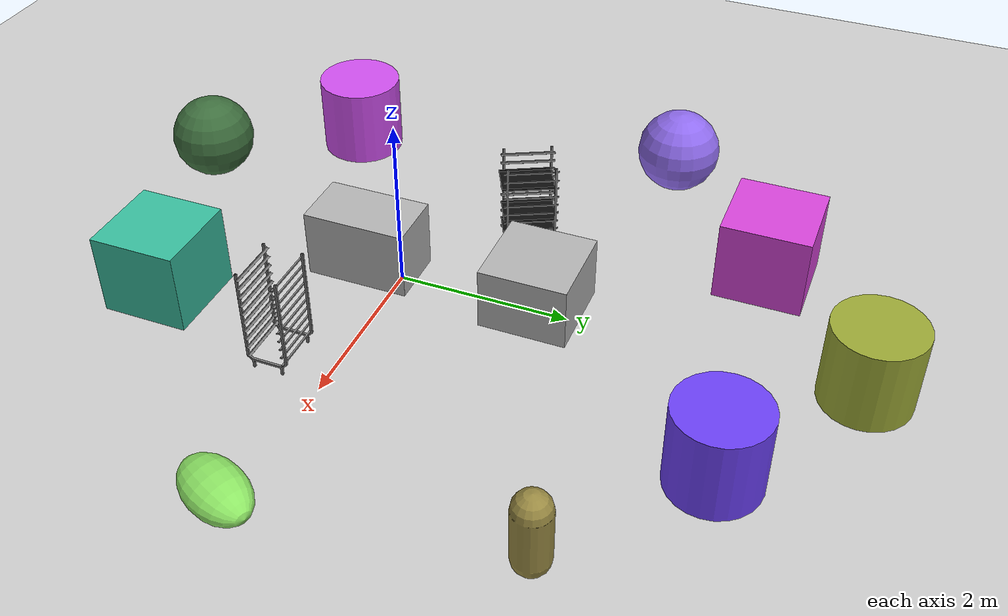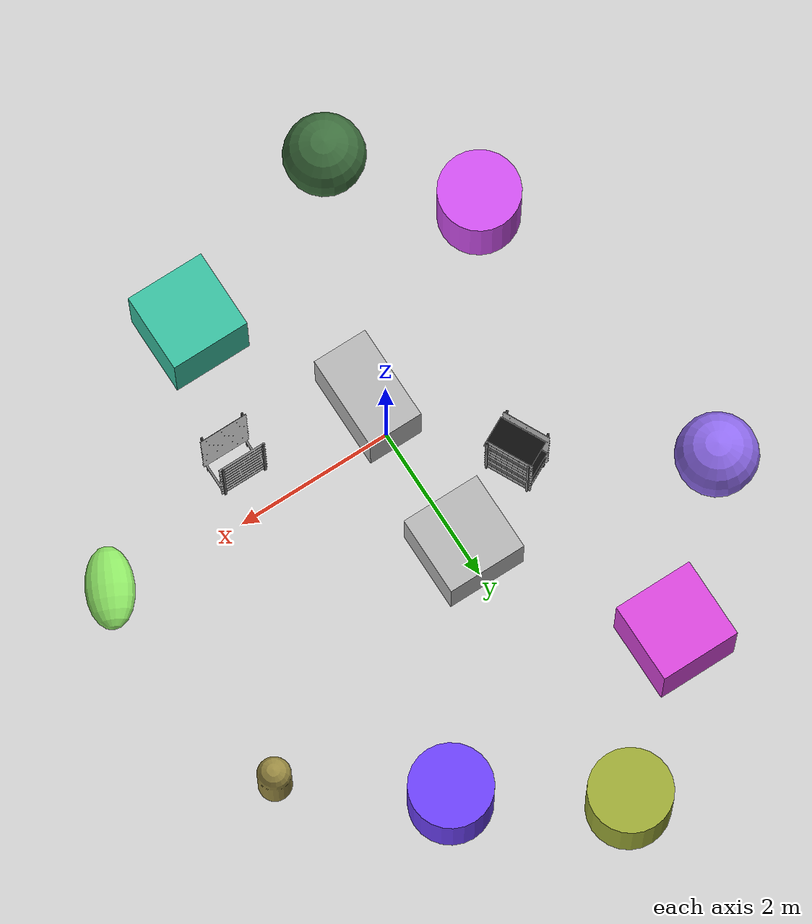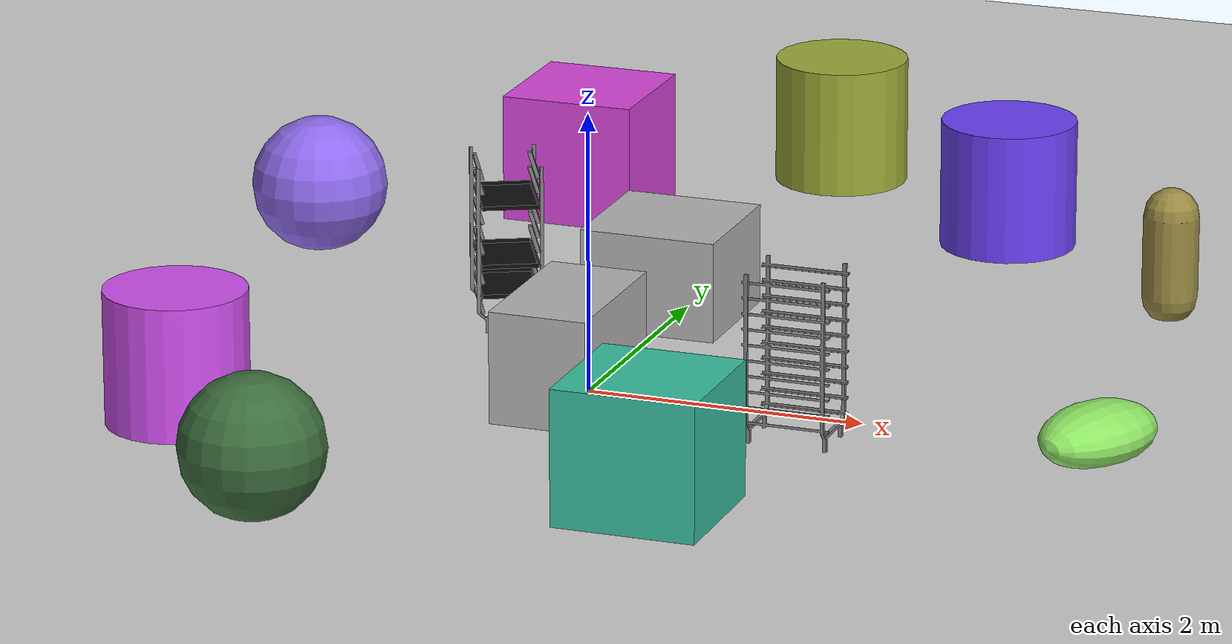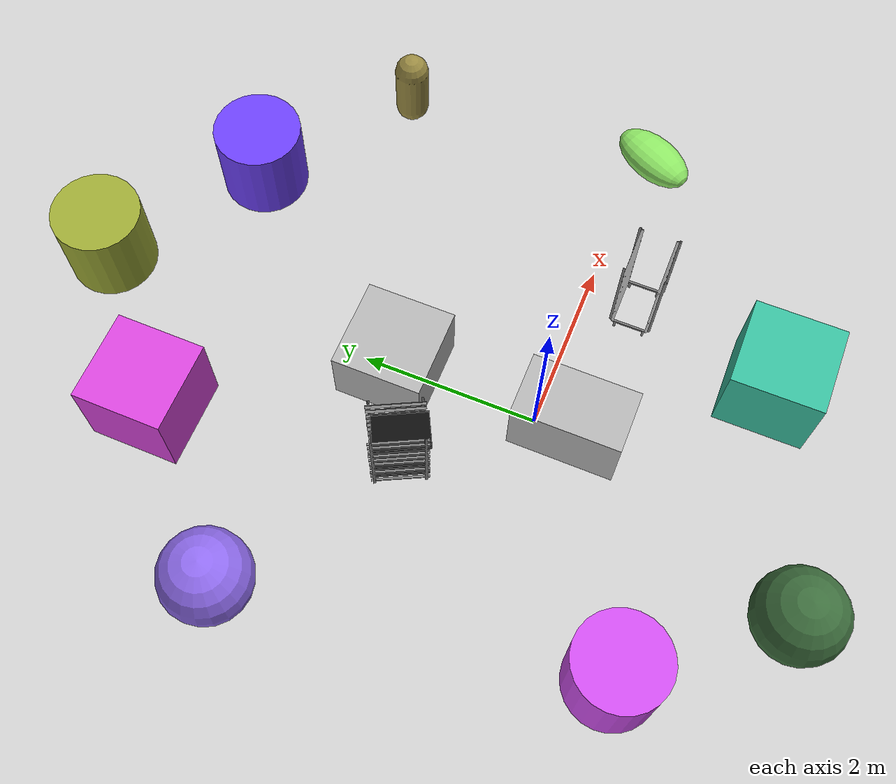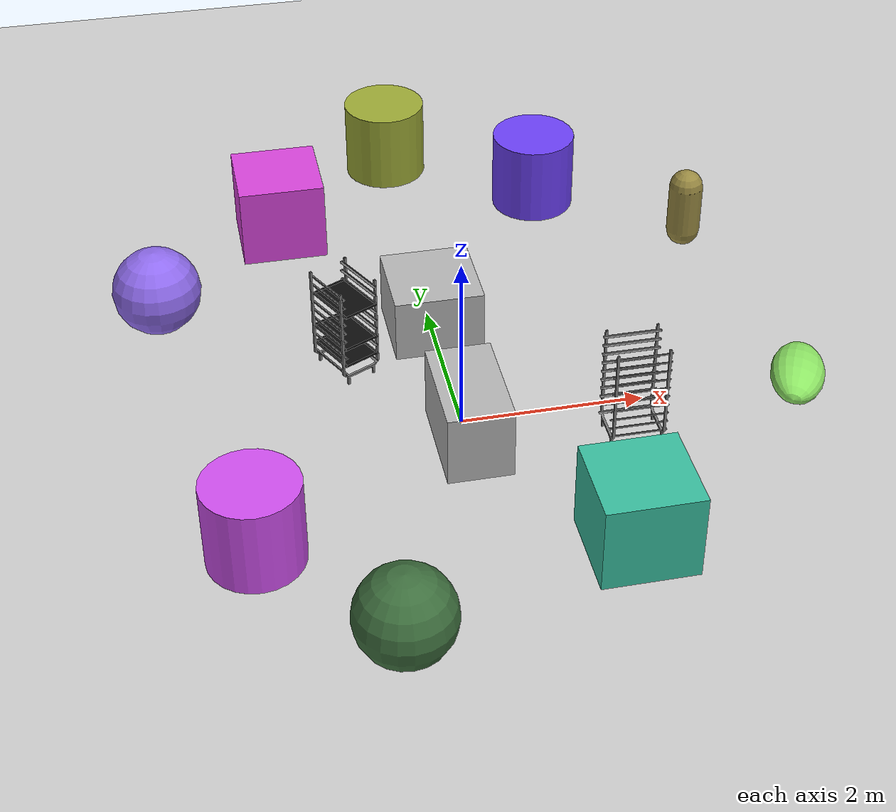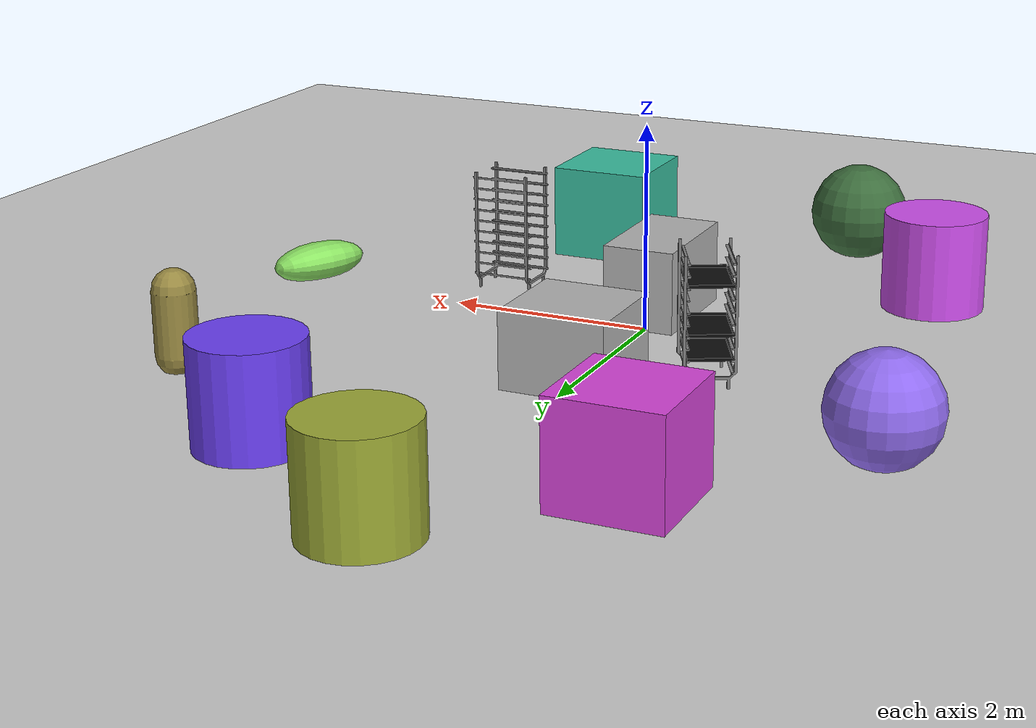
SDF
<sdf version='1.10'>
  <world name='learning'>
    <physics name='1ms' type='ignored'>
      <max_step_size>0.001</max_step_size>
      <real_time_factor>1</real_time_factor>
      <real_time_update_rate>1000</real_time_update_rate>
    </physics>
    <plugin name='gz::sim::systems::Physics' filename='gz-sim-physics-system'/>
    <plugin name='gz::sim::systems::UserCommands' filename='gz-sim-user-commands-system'/>
    <plugin name='gz::sim::systems::SceneBroadcaster' filename='gz-sim-scene-broadcaster-system'/>
    <plugin name='gz::sim::systems::Contact' filename='gz-sim-contact-system'/>
    <plugin name='gz::sim::systems::Sensors' filename='gz-sim-sensors-system'>
      <render_engine>ogre2</render_engine>
    </plugin>
    <gravity>0 0 -9.8100000000000005</gravity>
    <magnetic_field>6.0000000000000002e-06 2.3e-05 -4.1999999999999998e-05</magnetic_field>
    <atmosphere type='adiabatic'/>
    <scene>
      <ambient>0.400000006 0.400000006 0.400000006 1</ambient>
      <background>0.699999988 0.699999988 0.699999988 1</background>
      <shadows>true</shadows>
    </scene>
    <model name='ground_plane'>
      <plugin name='gz::sim::systems::JointStatePublisher' filename='gz-sim-joint-state-publisher-system'>
        <topic>joint_states</topic>
      </plugin>
      <static>true</static>
      <link name='link'>
        <collision name='collision'>
          <geometry>
            <plane>
              <normal>0 0 1</normal>
              <size>100 100</size>
            </plane>
          </geometry>
          <surface>
            <friction>
              <ode/>
            </friction>
            <bounce/>
            <contact/>
          </surface>
        </collision>
        <visual name='visual'>
          <plugin name='gz::sim::systems::Label' filename='libgz-sim-label-system.so'>
            <label>102</label>
          </plugin>
          <geometry>
            <plane>
              <normal>0 0 1</normal>
              <size>100 100</size>
            </plane>
          </geometry>
          <material>
            <ambient>0.800000012 0.800000012 0.800000012 1</ambient>
            <diffuse>0.800000012 0.800000012 0.800000012 1</diffuse>
            <specular>0.800000012 0.800000012 0.800000012 1</specular>
          </material>
        </visual>
        <pose>0 0 0 0 0 0</pose>
        <inertial>
          <pose>0 0 0 0 0 0</pose>
          <mass>1</mass>
          <inertia>
            <ixx>1</ixx>
            <ixy>0</ixy>
            <ixz>0</ixz>
            <iyy>1</iyy>
            <iyz>0</iyz>
            <izz>1</izz>
          </inertia>
        </inertial>
        <enable_wind>false</enable_wind>
      </link>
      <pose>0 0 0 0 0 0</pose>
      <self_collide>false</self_collide>
    </model>
    <model name='Vassoio_0'>
      <pose>-1.3651255463218332 1.3157348920685599 0.31099999027385988 9.8859992240550935e-09 -4.9092661991608451e-09 -1.1063756580841015</pose>
      <static>false</static>
      <self_collide>false</self_collide>
      <link name='link'>
        <pose>0 0 0 0 0 0</pose>
        <inertial>
          <pose>0.29999999999999999 0.20000000000000001 0.0032000000000000002 0 0 0</pose>
          <mass>1.522</mass>
          <inertia>
            <ixx>0.0079399999999999991</ixx>
            <ixy>0</ixy>
            <ixz>0</ixz>
            <iyy>0.01404</iyy>
            <iyz>0</iyz>
            <izz>0.02198</izz>
          </inertia>
        </inertial>
        <visual name='visual'>
          <plugin name='gz::sim::systems::Label' filename='libgz-sim-label-system.so'>
            <label>100</label>
          </plugin>
          <geometry>
            <mesh>
              <uri>file:///home/nicola/ros2_ws/src/meshes/Vassoio.dae</uri>
            </mesh>
          </geometry>
          <material>
            <ambient>0.0500000007 0.0500000007 0.0500000007 1</ambient>
            <diffuse>0.0500000007 0.0500000007 0.0500000007 1</diffuse>
            <specular>0.100000001 0.100000001 0.100000001 1</specular>
          </material>
        </visual>
        <collision name='collision'>
          <geometry>
            <mesh>
              <uri>file:///home/nicola/ros2_ws/src/meshes/Vassoio.dae</uri>
            </mesh>
          </geometry>
          <surface>
            <friction>
              <torsional>
                <coefficient>0.001</coefficient>
                <use_patch_radius>true</use_patch_radius>
                <patch_radius>0.050000000000000003</patch_radius>
              </torsional>
            </friction>
            <bounce>
              <restitution_coefficient>0.20000000000000001</restitution_coefficient>
              <threshold>100000</threshold>
            </bounce>
          </surface>
        </collision>
        <enable_wind>false</enable_wind>
      </link>
    </model>
    <model name='Carrello'>
      <pose>-1.1406008005142212 0.78489732742309581 0.14000000059604645 0 0 0.46673401580508656</pose>
      <static>true</static>
      <self_collide>false</self_collide>
      <link name='link'>
        <pose>0 0 0 0 0 0</pose>
        <inertial>
          <pose>0.23749999999999999 0.28689999999999999 0.499 0 0 0</pose>
          <mass>24.928000000000001</mass>
          <inertia>
            <ixx>0.066227999999999995</ixx>
            <ixy>0</ixy>
            <ixz>0.013979</ixz>
            <iyy>0.074418999999999999</iyy>
            <iyz>0</iyz>
            <izz>0.0082780000000000006</izz>
          </inertia>
        </inertial>
        <visual name='visual'>
          <plugin name='gz::sim::systems::Label' filename='libgz-sim-label-system.so'>
            <label>101</label>
          </plugin>
          <geometry>
            <mesh>
              <uri>file:///home/nicola/ros2_ws/src/meshes/Carrello.dae</uri>
            </mesh>
          </geometry>
          <material>
            <ambient>0.5 0.5 0.5 1</ambient>
            <diffuse>0.5 0.5 0.5 1</diffuse>
            <specular>0.300000012 0.300000012 0.300000012 1</specular>
          </material>
        </visual>
        <collision name='collision'>
          <geometry>
            <mesh>
              <uri>file:///home/nicola/ros2_ws/src/meshes/Carrello.dae</uri>
            </mesh>
          </geometry>
          <surface>
            <friction>
              <torsional>
                <coefficient>0.001</coefficient>
                <use_patch_radius>true</use_patch_radius>
                <patch_radius>0.050000000000000003</patch_radius>
              </torsional>
            </friction>
            <bounce>
              <restitution_coefficient>0.0050000000000000001</restitution_coefficient>
              <threshold>100000</threshold>
            </bounce>
          </surface>
        </collision>
        <enable_wind>false</enable_wind>
      </link>
    </model>
    <model name='Vassoio_1'>
      <pose>-0.7431538770188123 0.95912390777624756 0.53099998371315527 1.7699529900146696e-08 -1.5942594935235341e-08 2.0372759542563963</pose>
      <static>false</static>
      <self_collide>false</self_collide>
      <link name='link'>
        <pose>0 0 0 0 0 0</pose>
        <inertial>
          <pose>0.29999999999999999 0.20000000000000001 0.0032000000000000002 0 0 0</pose>
          <mass>1.522</mass>
          <inertia>
            <ixx>0.0079399999999999991</ixx>
            <ixy>0</ixy>
            <ixz>0</ixz>
            <iyy>0.01404</iyy>
            <iyz>0</iyz>
            <izz>0.02198</izz>
          </inertia>
        </inertial>
        <visual name='visual'>
          <plugin name='gz::sim::systems::Label' filename='libgz-sim-label-system.so'>
            <label>100</label>
          </plugin>
          <geometry>
            <mesh>
              <uri>file:///home/nicola/ros2_ws/src/meshes/Vassoio.dae</uri>
            </mesh>
          </geometry>
          <material>
            <ambient>0.0500000007 0.0500000007 0.0500000007 1</ambient>
            <diffuse>0.0500000007 0.0500000007 0.0500000007 1</diffuse>
            <specular>0.100000001 0.100000001 0.100000001 1</specular>
          </material>
        </visual>
        <collision name='collision'>
          <geometry>
            <mesh>
              <uri>file:///home/nicola/ros2_ws/src/meshes/Vassoio.dae</uri>
            </mesh>
          </geometry>
          <surface>
            <friction>
              <torsional>
                <coefficient>0.001</coefficient>
                <use_patch_radius>true</use_patch_radius>
                <patch_radius>0.050000000000000003</patch_radius>
              </torsional>
            </friction>
            <bounce>
              <restitution_coefficient>0.20000000000000001</restitution_coefficient>
              <threshold>100000</threshold>
            </bounce>
          </surface>
        </collision>
        <enable_wind>false</enable_wind>
      </link>
    </model>
    <model name='Vassoio_2'>
      <pose>-0.72779052239089292 0.93967858207348876 0.9709999434224289 -4.7919170388024155e-09 -7.4276897211374393e-07 2.0430753028906334</pose>
      <static>false</static>
      <self_collide>false</self_collide>
      <link name='link'>
        <pose>0 0 0 0 0 0</pose>
        <inertial>
          <pose>0.29999999999999999 0.20000000000000001 0.0032000000000000002 0 0 0</pose>
          <mass>1.522</mass>
          <inertia>
            <ixx>0.0079399999999999991</ixx>
            <ixy>0</ixy>
            <ixz>0</ixz>
            <iyy>0.01404</iyy>
            <iyz>0</iyz>
            <izz>0.02198</izz>
          </inertia>
        </inertial>
        <visual name='visual'>
          <plugin name='gz::sim::systems::Label' filename='libgz-sim-label-system.so'>
            <label>100</label>
          </plugin>
          <geometry>
            <mesh>
              <uri>file:///home/nicola/ros2_ws/src/meshes/Vassoio.dae</uri>
            </mesh>
          </geometry>
          <material>
            <ambient>0.0500000007 0.0500000007 0.0500000007 1</ambient>
            <diffuse>0.0500000007 0.0500000007 0.0500000007 1</diffuse>
            <specular>0.100000001 0.100000001 0.100000001 1</specular>
          </material>
        </visual>
        <collision name='collision'>
          <geometry>
            <mesh>
              <uri>file:///home/nicola/ros2_ws/src/meshes/Vassoio.dae</uri>
            </mesh>
          </geometry>
          <surface>
            <friction>
              <torsional>
                <coefficient>0.001</coefficient>
                <use_patch_radius>true</use_patch_radius>
                <patch_radius>0.050000000000000003</patch_radius>
              </torsional>
            </friction>
            <bounce>
              <restitution_coefficient>0.20000000000000001</restitution_coefficient>
              <threshold>100000</threshold>
            </bounce>
          </surface>
        </collision>
        <enable_wind>false</enable_wind>
      </link>
    </model>
    <model name='sphere'>
      <pose>-3.0188999999999999 2.3855200000000001 0.5 0 0 0</pose>
      <link name='sphere_link'>
        <inertial>
          <inertia>
            <ixx>0.10000000000000001</ixx>
            <ixy>0</ixy>
            <ixz>0</ixz>
            <iyy>0.10000000000000001</iyy>
            <iyz>0</iyz>
            <izz>0.10000000000000001</izz>
          </inertia>
          <mass>1</mass>
          <pose>0 0 0 0 0 0</pose>
        </inertial>
        <collision name='sphere_collision'>
          <geometry>
            <sphere>
              <radius>0.5</radius>
            </sphere>
          </geometry>
          <surface>
            <friction>
              <ode/>
            </friction>
            <bounce/>
            <contact/>
          </surface>
        </collision>
        <visual name='sphere_visual'>
          <geometry>
            <sphere>
              <radius>0.5</radius>
            </sphere>
          </geometry>
          <material>
            <ambient>0.560000002 0.419999987 0.930000007 1</ambient>
            <diffuse>0.560000002 0.419999987 0.930000007 1</diffuse>
            <specular>0.5 0.5 0.5 1</specular>
          </material>
        </visual>
        <pose>0 0 0 0 0 0</pose>
        <enable_wind>false</enable_wind>
      </link>
      <static>true</static>
      <self_collide>false</self_collide>
    </model>
    <model name='cylinder'>
      <pose>-2.3627099999999999 -1.6678200000000001 0.499996 0 0 0</pose>
      <link name='cylinder_link'>
        <inertial>
          <inertia>
            <ixx>0.14580000000000001</ixx>
            <ixy>0</ixy>
            <ixz>0</ixz>
            <iyy>0.14580000000000001</iyy>
            <iyz>0</iyz>
            <izz>0.125</izz>
          </inertia>
          <mass>1</mass>
          <pose>0 0 0 0 0 0</pose>
        </inertial>
        <collision name='cylinder_collision'>
          <geometry>
            <cylinder>
              <radius>0.5</radius>
              <length>1</length>
            </cylinder>
          </geometry>
          <surface>
            <friction>
              <ode/>
            </friction>
            <bounce/>
            <contact/>
          </surface>
        </collision>
        <visual name='cylinder_visual'>
          <geometry>
            <cylinder>
              <radius>0.5</radius>
              <length>1</length>
            </cylinder>
          </geometry>
          <material>
            <ambient>0.810000002 0.310000002 0.930000007 1</ambient>
            <diffuse>0.810000002 0.310000002 0.930000007 1</diffuse>
            <specular>0.5 0.5 0.5 1</specular>
          </material>
        </visual>
        <pose>0 0 0 0 0 0</pose>
        <enable_wind>false</enable_wind>
      </link>
      <static>true</static>
      <self_collide>false</self_collide>
    </model>
    <model name='box'>
      <pose>1.27199 -2.2716500000000002 0.49982300000000002 9.4000000000000076e-05 -0.00015099999999999971 0.0021530000000000034</pose>
      <link name='box_link'>
        <inertial>
          <inertia>
            <ixx>0.16666</ixx>
            <ixy>0</ixy>
            <ixz>0</ixz>
            <iyy>0.16666</iyy>
            <iyz>0</iyz>
            <izz>0.16666</izz>
          </inertia>
          <mass>1</mass>
          <pose>0 0 0 0 0 0</pose>
        </inertial>
        <collision name='box_collision'>
          <geometry>
            <box>
              <size>1 1 1</size>
            </box>
          </geometry>
          <surface>
            <friction>
              <ode/>
            </friction>
            <bounce/>
            <contact/>
          </surface>
        </collision>
        <visual name='box_visual'>
          <geometry>
            <box>
              <size>1 1 1</size>
            </box>
          </geometry>
          <material>
            <ambient>0.219999999 0.74000001 0.620000005 1</ambient>
            <diffuse>0.219999999 0.74000001 0.620000005 1</diffuse>
            <specular>0.5 0.5 0.5 1</specular>
          </material>
        </visual>
        <pose>0 0 0 0 0 0</pose>
        <enable_wind>false</enable_wind>
      </link>
      <static>true</static>
      <self_collide>false</self_collide>
    </model>
    <model name='Carrello_1'>
      <pose>1.42439 -0.35821799999999998 0.13994100000000001 -6.841119999999998e-05 -4.6294399999999995e-05 -1.5708099999999994</pose>
      <static>true</static>
      <self_collide>false</self_collide>
      <link name='link'>
        <pose>0 0 0 0 0 0</pose>
        <inertial>
          <pose>0.23749999999999999 0.28689999999999999 0.499 0 0 0</pose>
          <mass>24.928000000000001</mass>
          <inertia>
            <ixx>0.066227999999999995</ixx>
            <ixy>0</ixy>
            <ixz>0.013979</ixz>
            <iyy>0.074418999999999999</iyy>
            <iyz>0</iyz>
            <izz>0.0082780000000000006</izz>
          </inertia>
        </inertial>
        <visual name='visual'>
          <plugin name='gz::sim::systems::Label' filename='libgz-sim-label-system.so'>
            <label>101</label>
          </plugin>
          <geometry>
            <mesh>
              <uri>file:///home/nicola/ros2_ws/src/meshes/Carrello.dae</uri>
            </mesh>
          </geometry>
          <material>
            <ambient>0.5 0.5 0.5 1</ambient>
            <diffuse>0.5 0.5 0.5 1</diffuse>
            <specular>0.300000012 0.300000012 0.300000012 1</specular>
          </material>
        </visual>
        <collision name='collision'>
          <geometry>
            <mesh>
              <uri>file:///home/nicola/ros2_ws/src/meshes/Carrello.dae</uri>
            </mesh>
          </geometry>
          <surface>
            <friction>
              <torsional>
                <coefficient>0.001</coefficient>
                <use_patch_radius>true</use_patch_radius>
                <patch_radius>0.050000000000000003</patch_radius>
              </torsional>
            </friction>
            <bounce>
              <restitution_coefficient>0.0050000000000000001</restitution_coefficient>
              <threshold>100000</threshold>
            </bounce>
          </surface>
        </collision>
        <enable_wind>false</enable_wind>
      </link>
    </model>
    <model name='cylinder_0'>
      <pose>0.074198 5.2423299999999999 0.49998300000000001 0 0 0</pose>
      <link name='cylinder_link'>
        <inertial>
          <inertia>
            <ixx>0.14580000000000001</ixx>
            <ixy>0</ixy>
            <ixz>0</ixz>
            <iyy>0.14580000000000001</iyy>
            <iyz>0</iyz>
            <izz>0.125</izz>
          </inertia>
          <mass>1</mass>
          <pose>0 0 0 0 0 0</pose>
        </inertial>
        <collision name='cylinder_collision'>
          <geometry>
            <cylinder>
              <radius>0.5</radius>
              <length>1</length>
            </cylinder>
          </geometry>
          <surface>
            <friction>
              <ode/>
            </friction>
            <bounce/>
            <contact/>
          </surface>
        </collision>
        <visual name='cylinder_visual'>
          <geometry>
            <cylinder>
              <radius>0.5</radius>
              <length>1</length>
            </cylinder>
          </geometry>
          <material>
            <ambient>0.610000014 0.660000026 0.209999993 1</ambient>
            <diffuse>0.610000014 0.660000026 0.209999993 1</diffuse>
            <specular>0.5 0.5 0.5 1</specular>
          </material>
        </visual>
        <pose>0 0 0 0 0 0</pose>
        <enable_wind>false</enable_wind>
      </link>
      <static>true</static>
      <self_collide>false</self_collide>
    </model>
    <model name='ground_plane_1'>
      <plugin name='gz::sim::systems::JointStatePublisher' filename='gz-sim-joint-state-publisher-system'>
        <topic>joint_states</topic>
      </plugin>
      <static>true</static>
      <link name='link'>
        <collision name='collision'>
          <geometry>
            <plane>
              <normal>0 0 1</normal>
              <size>100 100</size>
            </plane>
          </geometry>
          <surface>
            <friction>
              <ode/>
            </friction>
            <bounce/>
            <contact/>
          </surface>
        </collision>
        <visual name='visual'>
          <plugin name='gz::sim::systems::Label' filename='libgz-sim-label-system.so'>
            <label>102</label>
          </plugin>
          <geometry>
            <plane>
              <normal>0 0 1</normal>
              <size>100 100</size>
            </plane>
          </geometry>
          <material>
            <ambient>0.800000012 0.800000012 0.800000012 1</ambient>
            <diffuse>0.800000012 0.800000012 0.800000012 1</diffuse>
            <specular>0.800000012 0.800000012 0.800000012 1</specular>
          </material>
        </visual>
        <pose>0 0 0 0 0 0</pose>
        <inertial>
          <pose>0 0 0 0 0 0</pose>
          <mass>1</mass>
          <inertia>
            <ixx>1</ixx>
            <ixy>0</ixy>
            <ixz>0</ixz>
            <iyy>1</iyy>
            <iyz>0</iyz>
            <izz>1</izz>
          </inertia>
        </inertial>
        <enable_wind>false</enable_wind>
      </link>
      <pose>1.69373 -0.45503500000000002 0 0 0 0</pose>
      <self_collide>false</self_collide>
    </model>
    <model name='capsule'>
      <pose>3.3494199999999998 2.8507099999999999 0.5 0 0 0</pose>
      <link name='capsule_link'>
        <inertial>
          <inertia>
            <ixx>0.074153999999999998</ixx>
            <ixy>0</ixy>
            <ixz>0</ixz>
            <iyy>0.074153999999999998</iyy>
            <iyz>0</iyz>
            <izz>0.018769000000000001</izz>
          </inertia>
          <mass>1</mass>
          <pose>0 0 0 0 0 0</pose>
        </inertial>
        <collision name='capsule_collision'>
          <geometry>
            <capsule>
              <radius>0.20000000000000001</radius>
              <length>0.59999999999999998</length>
            </capsule>
          </geometry>
          <surface>
            <friction>
              <ode/>
            </friction>
            <bounce/>
            <contact/>
          </surface>
        </collision>
        <visual name='capsule_visual'>
          <geometry>
            <capsule>
              <radius>0.20000000000000001</radius>
              <length>0.59999999999999998</length>
            </capsule>
          </geometry>
          <material>
            <ambient>0.600000024 0.540000021 0.25999999 1</ambient>
            <diffuse>0.600000024 0.540000021 0.25999999 1</diffuse>
            <specular>0.5 0.5 0.5 1</specular>
          </material>
        </visual>
        <pose>0 0 0 0 0 0</pose>
        <enable_wind>false</enable_wind>
      </link>
      <static>true</static>
      <self_collide>false</self_collide>
    </model>
    <model name='ellipsoid'>
      <pose>3.70919 -0.14779100000000001 0.186668 1.5708000000000046 -1.377490000000005 -0.45564200000000343</pose>
      <link name='ellipsoid_link'>
        <inertial>
          <inertia>
            <ixx>0.068000000000000005</ixx>
            <ixy>0</ixy>
            <ixz>0</ixz>
            <iyy>0.058000000000000003</iyy>
            <iyz>0</iyz>
            <izz>0.025999999999999999</izz>
          </inertia>
          <mass>1</mass>
          <pose>0 0 0 0 0 0</pose>
        </inertial>
        <collision name='ellipsoid_collision'>
          <geometry>
            <ellipsoid>
              <radii>0.20000000000000001 0.29999999999999999 0.5</radii>
            </ellipsoid>
          </geometry>
          <surface>
            <friction>
              <ode/>
            </friction>
            <bounce/>
            <contact/>
          </surface>
        </collision>
        <visual name='ellipsoid_visual'>
          <geometry>
            <ellipsoid>
              <radii>0.20000000000000001 0.29999999999999999 0.5</radii>
            </ellipsoid>
          </geometry>
          <material>
            <ambient>0.550000012 0.889999986 0.389999986 1</ambient>
            <diffuse>0.550000012 0.889999986 0.389999986 1</diffuse>
            <specular>0.5 0.5 0.5 1</specular>
          </material>
        </visual>
        <pose>0 0 0 0 0 0</pose>
        <enable_wind>false</enable_wind>
      </link>
      <static>true</static>
      <self_collide>false</self_collide>
    </model>
    <model name='cylinder_1'>
      <pose>1.75709 4.0923100000000003 0.5 6.5635599999999998e-18 -3.3955799999999999e-17 -5.8824200000000006e-20</pose>
      <link name='cylinder_link'>
        <inertial>
          <inertia>
            <ixx>0.14580000000000001</ixx>
            <ixy>0</ixy>
            <ixz>0</ixz>
            <iyy>0.14580000000000001</iyy>
            <iyz>0</iyz>
            <izz>0.125</izz>
          </inertia>
          <mass>1</mass>
          <pose>0 0 0 0 0 0</pose>
        </inertial>
        <collision name='cylinder_collision'>
          <geometry>
            <cylinder>
              <radius>0.5</radius>
              <length>1</length>
            </cylinder>
          </geometry>
          <surface>
            <friction>
              <ode/>
            </friction>
            <bounce/>
            <contact/>
          </surface>
        </collision>
        <visual name='cylinder_visual'>
          <geometry>
            <cylinder>
              <radius>0.5</radius>
              <length>1</length>
            </cylinder>
          </geometry>
          <material>
            <ambient>0.419999987 0.25 0.959999979 1</ambient>
            <diffuse>0.419999987 0.25 0.959999979 1</diffuse>
            <specular>0.5 0.5 0.5 1</specular>
          </material>
        </visual>
        <pose>0 0 0 0 0 0</pose>
        <enable_wind>false</enable_wind>
      </link>
      <static>true</static>
      <self_collide>false</self_collide>
    </model>
    <model name='sphere_0'>
      <pose>-1.1620200000000001 -3.1542500000000002 0.5 8.7325299999999997e-40 -3.1446200000000001e-19 1.93763e-55</pose>
      <link name='sphere_link'>
        <inertial>
          <inertia>
            <ixx>0.10000000000000001</ixx>
            <ixy>0</ixy>
            <ixz>0</ixz>
            <iyy>0.10000000000000001</iyy>
            <iyz>0</iyz>
            <izz>0.10000000000000001</izz>
          </inertia>
          <mass>1</mass>
          <pose>0 0 0 0 0 0</pose>
        </inertial>
        <collision name='sphere_collision'>
          <geometry>
            <sphere>
              <radius>0.5</radius>
            </sphere>
          </geometry>
          <surface>
            <friction>
              <ode/>
            </friction>
            <bounce/>
            <contact/>
          </surface>
        </collision>
        <visual name='sphere_visual'>
          <geometry>
            <sphere>
              <radius>0.5</radius>
            </sphere>
          </geometry>
          <material>
            <ambient>0.239999995 0.430000007 0.239999995 1</ambient>
            <diffuse>0.239999995 0.430000007 0.239999995 1</diffuse>
            <specular>0.5 0.5 0.5 1</specular>
          </material>
        </visual>
        <pose>0 0 0 0 0 0</pose>
        <enable_wind>false</enable_wind>
      </link>
      <static>true</static>
      <self_collide>false</self_collide>
    </model>
    <model name='box_0'>
      <pose>-1.4552799999999999 3.8727900000000002 0.49999999985431287 5.3253350339557557e-21 5.6729341607369718e-20 -9.9684327809469141e-21</pose>
      <link name='box_link'>
        <inertial>
          <inertia>
            <ixx>0.16666</ixx>
            <ixy>0</ixy>
            <ixz>0</ixz>
            <iyy>0.16666</iyy>
            <iyz>0</iyz>
            <izz>0.16666</izz>
          </inertia>
          <mass>1</mass>
          <pose>0 0 0 0 0 0</pose>
        </inertial>
        <collision name='box_collision'>
          <geometry>
            <box>
              <size>1 1 1</size>
            </box>
          </geometry>
          <surface>
            <friction>
              <ode/>
            </friction>
            <bounce/>
            <contact/>
          </surface>
        </collision>
        <visual name='box_visual'>
          <geometry>
            <box>
              <size>1 1 1</size>
            </box>
          </geometry>
          <material>
            <ambient>0.839999974 0.270000011 0.850000024 1</ambient>
            <diffuse>0.839999974 0.270000011 0.850000024 1</diffuse>
            <specular>0.5 0.5 0.5 1</specular>
          </material>
        </visual>
        <pose>0 0 0 0 0 0</pose>
        <enable_wind>false</enable_wind>
      </link>
      <static>false</static>
      <self_collide>false</self_collide>
    </model>
    <model name='box_1'>
      <pose>0 1.6499999999999999 0.40000000000000002 0 0 0</pose>
      <link name='box_link'>
        <inertial>
          <inertia>
            <ixx>0.16666</ixx>
            <ixy>0</ixy>
            <ixz>0</ixz>
            <iyy>0.16666</iyy>
            <iyz>0</iyz>
            <izz>0.16666</izz>
          </inertia>
          <mass>1</mass>
          <pose>0 0 0 0 0 0</pose>
        </inertial>
        <collision name='box_collision'>
          <geometry>
            <box>
              <size>1 1 0.75999999999999998</size>
            </box>
          </geometry>
          <surface>
            <friction>
              <ode>
                <mu>1.5</mu>
                <mu2>1.5</mu2>
              </ode>
            </friction>
            <bounce/>
            <contact/>
          </surface>
        </collision>
        <visual name='box_visual'>
          <geometry>
            <box>
              <size>1 1 0.75999999999999998</size>
            </box>
          </geometry>
          <material>
            <ambient>0.300000012 0.300000012 0.300000012 1</ambient>
            <diffuse>0.699999988 0.699999988 0.699999988 1</diffuse>
            <specular>1 1 1 1</specular>
          </material>
        </visual>
        <pose>0 0 0 0 0 0</pose>
        <enable_wind>false</enable_wind>
      </link>
      <static>true</static>
      <self_collide>false</self_collide>
    </model>
    <model name='box_2'>
      <pose>0 -0.40000000000000002 0.45000000000000001 0 0 0</pose>
      <link name='box_link'>
        <inertial>
          <inertia>
            <ixx>0.16666</ixx>
            <ixy>0</ixy>
            <ixz>0</ixz>
            <iyy>0.16666</iyy>
            <iyz>0</iyz>
            <izz>0.16666</izz>
          </inertia>
          <mass>1</mass>
          <pose>0 0 0 0 0 0</pose>
        </inertial>
        <collision name='box_collision'>
          <geometry>
            <box>
              <size>0.69999999999999996 1.2 0.80000000000000004</size>
            </box>
          </geometry>
          <surface>
            <friction>
              <ode/>
            </friction>
            <bounce/>
            <contact/>
          </surface>
        </collision>
        <visual name='box_visual'>
          <geometry>
            <box>
              <size>0.69999999999999996 1.2 0.80000000000000004</size>
            </box>
          </geometry>
          <material>
            <ambient>0.300000012 0.300000012 0.300000012 1</ambient>
            <diffuse>0.699999988 0.699999988 0.699999988 1</diffuse>
            <specular>1 1 1 1</specular>
          </material>
        </visual>
        <pose>0 0 0 0 0 0</pose>
        <enable_wind>false</enable_wind>
      </link>
      <static>true</static>
      <self_collide>false</self_collide>
    </model>
    <light name='sun' type='directional'>
      <pose>0 0 8 0 0 0</pose>
      <cast_shadows>true</cast_shadows>
      <intensity>1</intensity>
      <direction>-0.5 0.10000000000000001 -0.90000000000000002</direction>
      <diffuse>0.800000012 0.800000012 0.800000012 1</diffuse>
      <specular>0.200000003 0.200000003 0.200000003 1</specular>
      <attenuation>
        <range>1000</range>
        <linear>0.0099999997764825821</linear>
        <constant>0.89999997615814209</constant>
        <quadratic>0.0010000000474974513</quadratic>
      </attenuation>
      <spot>
        <inner_angle>0</inner_angle>
        <outer_angle>0</outer_angle>
        <falloff>0</falloff>
      </spot>
    </light>
  </world>
</sdf>
